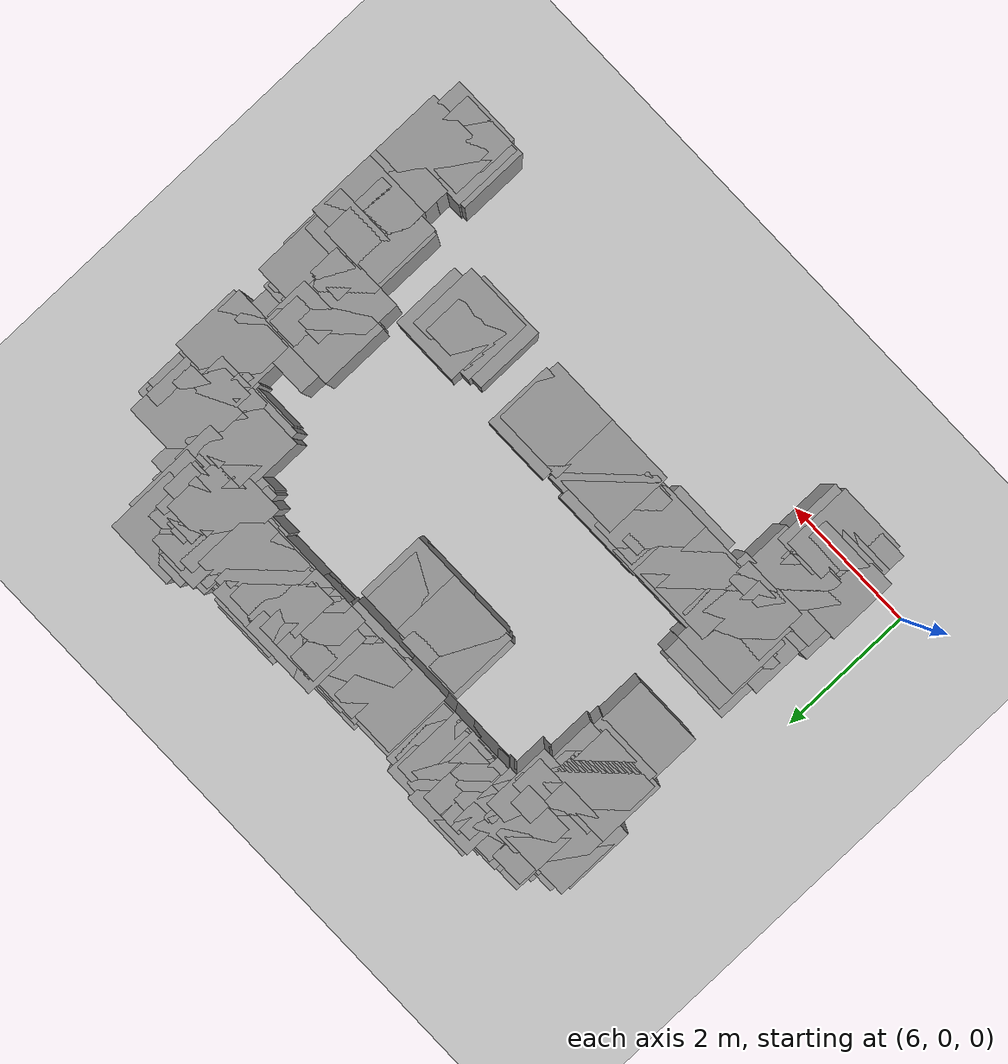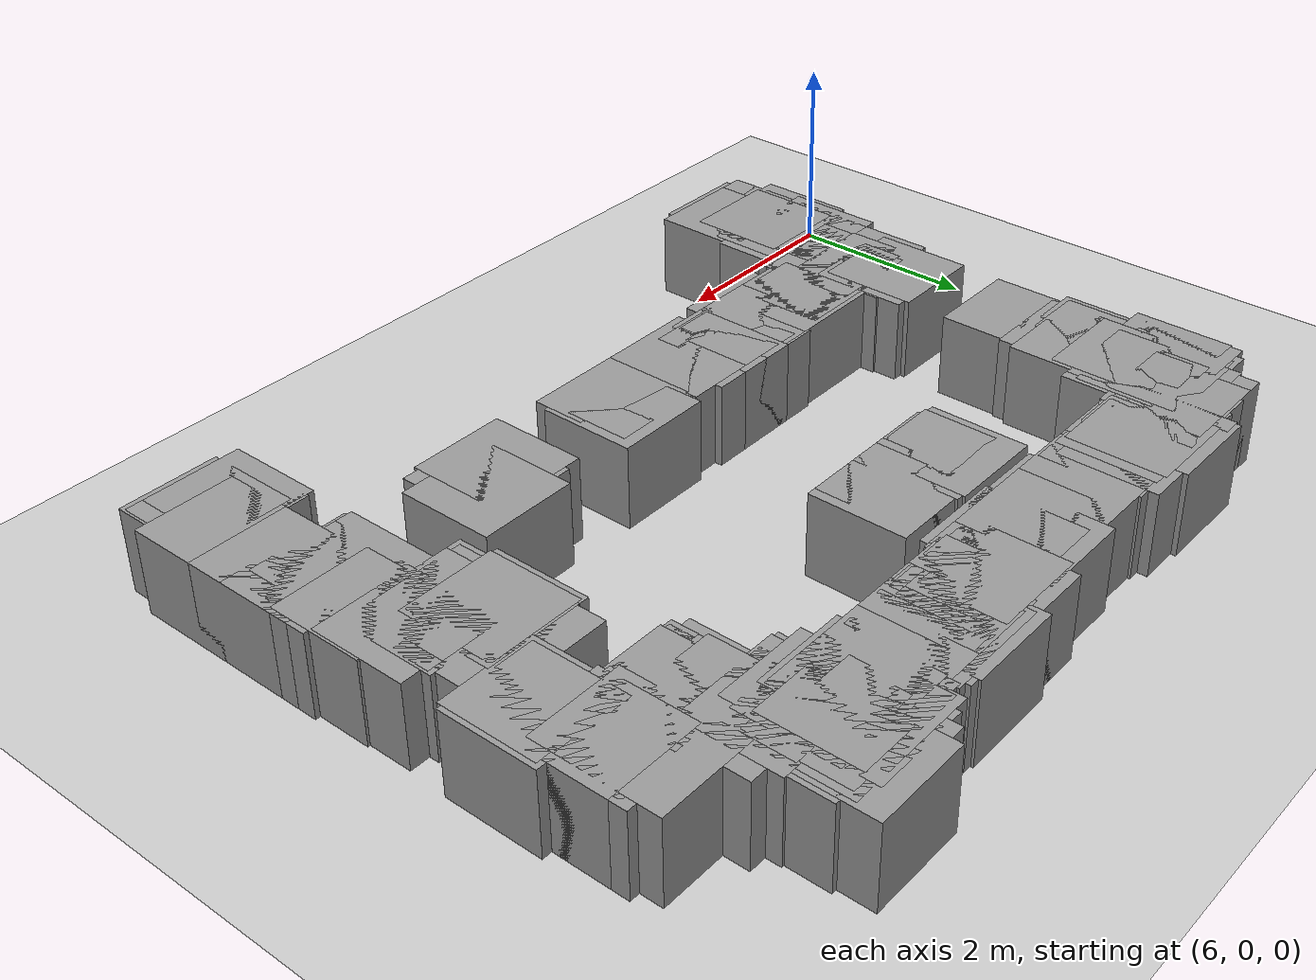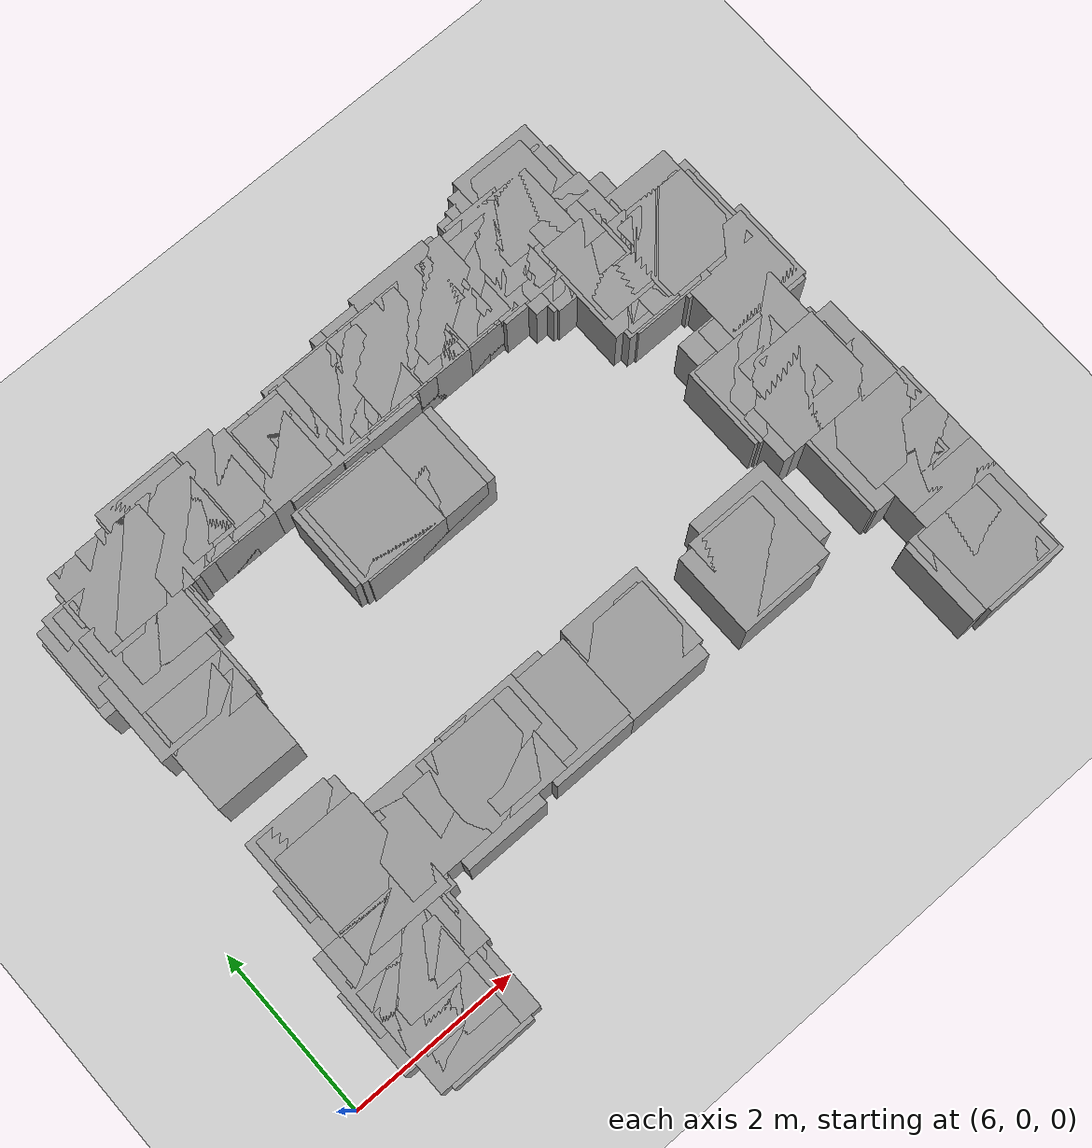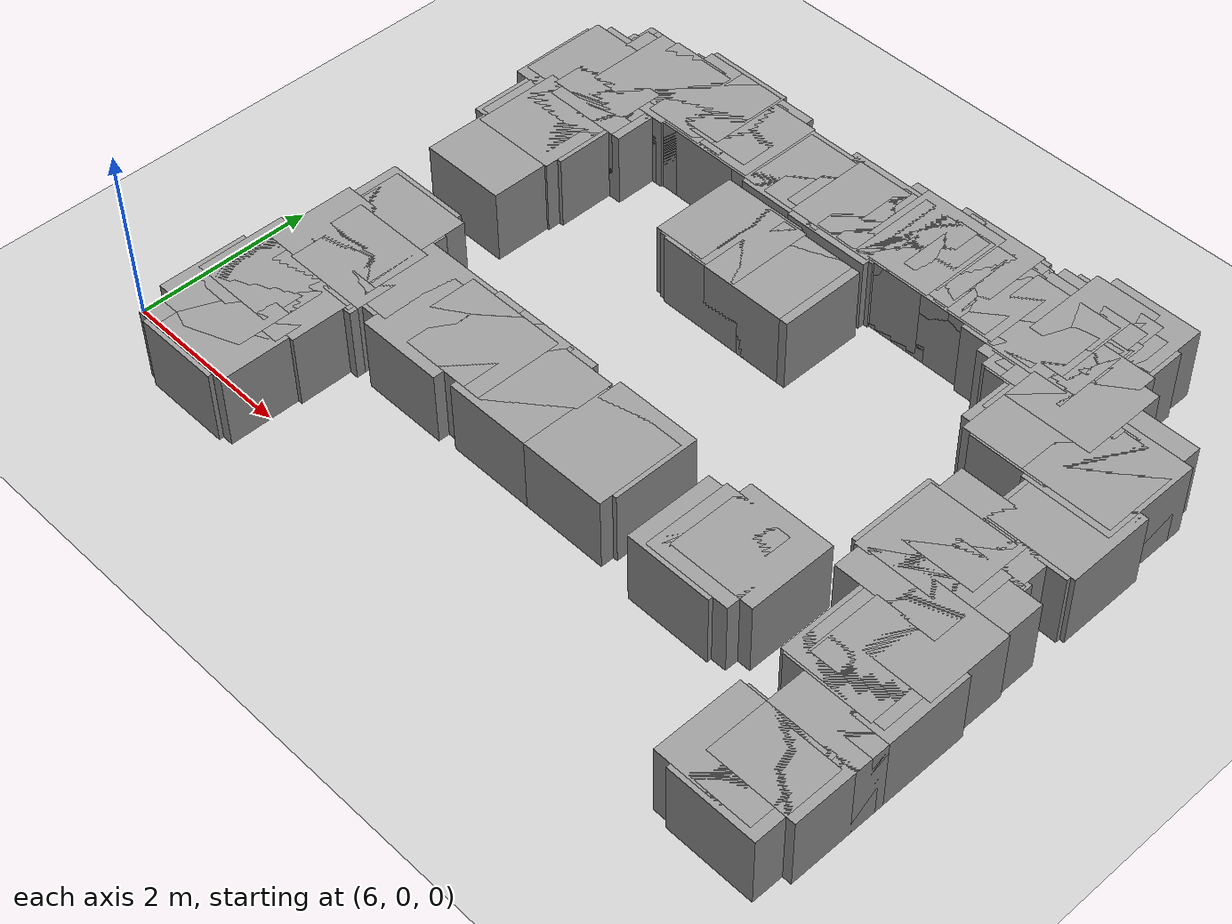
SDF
<sdf version="1.7">
 <world name="default">
  <model name="ground_plane">
   <static>1</static>
   <link name="link">
    <collision name="collision">
     <geometry><plane><normal>0 0 1</normal><size>100 100</size></plane></geometry>
     <surface>
      <contact><collide_bitmask>65535</collide_bitmask></contact>
      <friction><ode><mu>100</mu><mu2>50</mu2></ode></friction>
     </surface>
    </collision>
    <visual name="visual">
     <cast_shadows>0</cast_shadows>
     <geometry><plane><normal>0 0 1</normal><size>100 100</size></plane></geometry>
     <material>
      <script><uri>file://media/materials/scripts/gazebo.material</uri><name>Gazebo/Grey</name></script>
     </material>
    </visual>
   </link>
  </model>
  <include>
   <uri>model://unit_box</uri>
   <name>map_box_11</name>
   <pose>13.3575 5.9900 0.3500 0 0 0</pose>
   <scale>0.050 0.250 0.700</scale>
  </include>
  <include>
   <uri>model://unit_box</uri>
   <name>map_box_14</name>
   <pose>13.2075 5.8900 0.3500 0 0 0</pose>
   <scale>0.050 0.050 0.700</scale>
  </include>
  <include>
   <uri>model://unit_box</uri>
   <name>map_box_15</name>
   <pose>13.3075 5.7400 0.3500 0 0 0</pose>
   <scale>0.050 0.350 0.700</scale>
  </include>
  <include>
   <uri>model://unit_box</uri>
   <name>map_box_17</name>
   <pose>11.7575 5.6150 0.3500 0 0 0</pose>
   <scale>0.050 0.400 0.700</scale>
  </include>
  <include>
   <uri>model://unit_box</uri>
   <name>map_box_18</name>
   <pose>13.0825 5.7900 0.3500 0 0 0</pose>
   <scale>0.100 0.050 0.700</scale>
  </include>
  <include>
   <uri>model://unit_box</uri>
   <name>map_box_20</name>
   <pose>11.7075 5.7150 0.3500 0 0 0</pose>
   <scale>0.050 0.100 0.700</scale>
  </include>
  <include>
   <uri>model://unit_box</uri>
   <name>map_box_21</name>
   <pose>12.9325 5.7400 0.3500 0 0 0</pose>
   <scale>0.100 0.050 0.700</scale>
  </include>
  <include>
   <uri>model://unit_box</uri>
   <name>map_box_22</name>
   <pose>13.1075 5.4650 0.3500 0 0 0</pose>
   <scale>0.050 0.600 0.700</scale>
  </include>
  <include>
   <uri>model://unit_box</uri>
   <name>map_box_23</name>
   <pose>13.2325 5.6650 0.3500 0 0 0</pose>
   <scale>0.100 0.200 0.700</scale>
  </include>
  <include>
   <uri>model://unit_box</uri>
   <name>map_box_24</name>
   <pose>11.8075 5.6900 0.3500 0 0 0</pose>
   <scale>0.050 0.050 0.700</scale>
  </include>
  <include>
   <uri>model://unit_box</uri>
   <name>map_box_25</name>
   <pose>12.9575 5.6650 0.3500 0 0 0</pose>
   <scale>0.050 0.100 0.700</scale>
  </include>
  <include>
   <uri>model://unit_box</uri>
   <name>map_box_26</name>
   <pose>8.3325 5.6400 0.3500 0 0 0</pose>
   <scale>0.200 0.050 0.700</scale>
  </include>
  <include>
   <uri>model://unit_box</uri>
   <name>map_box_27</name>
   <pose>10.4075 5.5400 0.3500 0 0 0</pose>
   <scale>0.050 0.250 0.700</scale>
  </include>
  <include>
   <uri>model://unit_box</uri>
   <name>map_box_28</name>
   <pose>11.1325 5.6400 0.3500 0 0 0</pose>
   <scale>0.100 0.050 0.700</scale>
  </include>
  <include>
   <uri>model://unit_box</uri>
   <name>map_box_29</name>
   <pose>11.2825 5.6400 0.3500 0 0 0</pose>
   <scale>0.100 0.050 0.700</scale>
  </include>
  <include>
   <uri>model://unit_box</uri>
   <name>map_box_30</name>
   <pose>11.4075 5.5400 0.3500 0 0 0</pose>
   <scale>0.050 0.250 0.700</scale>
  </include>
  <include>
   <uri>model://unit_box</uri>
   <name>map_box_31</name>
   <pose>11.6325 5.5400 0.3500 0 0 0</pose>
   <scale>0.100 0.250 0.700</scale>
  </include>
  <include>
   <uri>model://unit_box</uri>
   <name>map_box_32</name>
   <pose>11.8825 5.6400 0.3500 0 0 0</pose>
   <scale>0.100 0.050 0.700</scale>
  </include>
  <include>
   <uri>model://unit_box</uri>
   <name>map_box_33</name>
   <pose>12.8325 5.6150 0.3500 0 0 0</pose>
   <scale>0.100 0.100 0.700</scale>
  </include>
  <include>
   <uri>model://unit_box</uri>
   <name>map_box_34</name>
   <pose>13.0325 5.6150 0.3500 0 0 0</pose>
   <scale>0.100 0.100 0.700</scale>
  </include>
  <include>
   <uri>model://unit_box</uri>
   <name>map_box_35</name>
   <pose>13.1575 5.4150 0.3500 0 0 0</pose>
   <scale>0.050 0.500 0.700</scale>
  </include>
  <include>
   <uri>model://unit_box</uri>
   <name>map_box_36</name>
   <pose>13.4075 5.6400 0.3500 0 0 0</pose>
   <scale>0.050 0.050 0.700</scale>
  </include>
  <include>
   <uri>model://unit_box</uri>
   <name>map_box_37</name>
   <pose>8.3075 5.5900 0.3500 0 0 0</pose>
   <scale>0.150 0.050 0.700</scale>
  </include>
  <include>
   <uri>model://unit_box</uri>
   <name>map_box_38</name>
   <pose>8.4825 5.5150 0.3500 0 0 0</pose>
   <scale>0.100 0.200 0.700</scale>
  </include>
  <include>
   <uri>model://unit_box</uri>
   <name>map_box_39</name>
   <pose>8.7575 5.5900 0.3500 0 0 0</pose>
   <scale>0.250 0.050 0.700</scale>
  </include>
  <include>
   <uri>model://unit_box</uri>
   <name>map_box_40</name>
   <pose>10.6825 5.5150 0.3500 0 0 0</pose>
   <scale>0.100 0.200 0.700</scale>
  </include>
  <include>
   <uri>model://unit_box</uri>
   <name>map_box_41</name>
   <pose>11.0325 5.5150 0.3500 0 0 0</pose>
   <scale>0.100 0.200 0.700</scale>
  </include>
  <include>
   <uri>model://unit_box</uri>
   <name>map_box_42</name>
   <pose>11.1575 5.5150 0.3500 0 0 0</pose>
   <scale>0.050 0.200 0.700</scale>
  </include>
  <include>
   <uri>model://unit_box</uri>
   <name>map_box_43</name>
   <pose>11.2575 5.5150 0.3500 0 0 0</pose>
   <scale>0.050 0.200 0.700</scale>
  </include>
  <include>
   <uri>model://unit_box</uri>
   <name>map_box_44</name>
   <pose>11.3575 5.5150 0.3500 0 0 0</pose>
   <scale>0.050 0.200 0.700</scale>
  </include>
  <include>
   <uri>model://unit_box</uri>
   <name>map_box_45</name>
   <pose>11.4825 5.5150 0.3500 0 0 0</pose>
   <scale>0.100 0.200 0.700</scale>
  </include>
  <include>
   <uri>model://unit_box</uri>
   <name>map_box_46</name>
   <pose>11.7075 5.5150 0.3500 0 0 0</pose>
   <scale>0.050 0.200 0.700</scale>
  </include>
  <include>
   <uri>model://unit_box</uri>
   <name>map_box_47</name>
   <pose>11.8075 5.5400 0.3500 0 0 0</pose>
   <scale>0.050 0.150 0.700</scale>
  </include>
  <include>
   <uri>model://unit_box</uri>
   <name>map_box_48</name>
   <pose>11.9075 5.5400 0.3500 0 0 0</pose>
   <scale>0.050 0.150 0.700</scale>
  </include>
  <include>
   <uri>model://unit_box</uri>
   <name>map_box_49</name>
   <pose>12.4575 5.5400 0.3500 0 0 0</pose>
   <scale>0.050 0.150 0.700</scale>
  </include>
  <include>
   <uri>model://unit_box</uri>
   <name>map_box_50</name>
   <pose>12.7325 5.5900 0.3500 0 0 0</pose>
   <scale>0.100 0.050 0.700</scale>
  </include>
  <include>
   <uri>model://unit_box</uri>
   <name>map_box_51</name>
   <pose>8.2075 5.4900 0.3500 0 0 0</pose>
   <scale>0.250 0.150 0.700</scale>
  </include>
  <include>
   <uri>model://unit_box</uri>
   <name>map_box_52</name>
   <pose>8.6075 5.4900 0.3500 0 0 0</pose>
   <scale>0.150 0.150 0.700</scale>
  </include>
  <include>
   <uri>model://unit_box</uri>
   <name>map_box_53</name>
   <pose>8.8825 5.4900 0.3500 0 0 0</pose>
   <scale>0.300 0.150 0.700</scale>
  </include>
  <include>
   <uri>model://unit_box</uri>
   <name>map_box_54</name>
   <pose>10.4575 5.4900 0.3500 0 0 0</pose>
   <scale>0.050 0.150 0.700</scale>
  </include>
  <include>
   <uri>model://unit_box</uri>
   <name>map_box_55</name>
   <pose>10.6075 5.4650 0.3500 0 0 0</pose>
   <scale>0.050 0.200 0.700</scale>
  </include>
  <include>
   <uri>model://unit_box</uri>
   <name>map_box_56</name>
   <pose>10.8575 5.4900 0.3500 0 0 0</pose>
   <scale>0.250 0.150 0.700</scale>
  </include>
  <include>
   <uri>model://unit_box</uri>
   <name>map_box_57</name>
   <pose>11.1075 5.4900 0.3500 0 0 0</pose>
   <scale>0.050 0.150 0.700</scale>
  </include>
  <include>
   <uri>model://unit_box</uri>
   <name>map_box_58</name>
   <pose>11.2075 5.4900 0.3500 0 0 0</pose>
   <scale>0.050 0.150 0.700</scale>
  </include>
  <include>
   <uri>model://unit_box</uri>
   <name>map_box_59</name>
   <pose>11.3075 5.4900 0.3500 0 0 0</pose>
   <scale>0.050 0.150 0.700</scale>
  </include>
  <include>
   <uri>model://unit_box</uri>
   <name>map_box_60</name>
   <pose>11.5575 5.4900 0.3500 0 0 0</pose>
   <scale>0.050 0.150 0.700</scale>
  </include>
  <include>
   <uri>model://unit_box</uri>
   <name>map_box_61</name>
   <pose>11.8575 5.5150 0.3500 0 0 0</pose>
   <scale>0.050 0.100 0.700</scale>
  </include>
  <include>
   <uri>model://unit_box</uri>
   <name>map_box_62</name>
   <pose>11.9825 5.5150 0.3500 0 0 0</pose>
   <scale>0.100 0.100 0.700</scale>
  </include>
  <include>
   <uri>model://unit_box</uri>
   <name>map_box_63</name>
   <pose>12.2825 5.5150 0.3500 0 0 0</pose>
   <scale>0.300 0.100 0.700</scale>
  </include>
  <include>
   <uri>model://unit_box</uri>
   <name>map_box_64</name>
   <pose>12.5075 5.5150 0.3500 0 0 0</pose>
   <scale>0.050 0.100 0.700</scale>
  </include>
  <include>
   <uri>model://unit_box</uri>
   <name>map_box_65</name>
   <pose>12.6325 5.5150 0.3500 0 0 0</pose>
   <scale>0.100 0.100 0.700</scale>
  </include>
  <include>
   <uri>model://unit_box</uri>
   <name>map_box_66</name>
   <pose>12.8075 5.4900 0.3500 0 0 0</pose>
   <scale>0.050 0.150 0.700</scale>
  </include>
  <include>
   <uri>model://unit_box</uri>
   <name>map_box_67</name>
   <pose>13.0075 5.4900 0.3500 0 0 0</pose>
   <scale>0.050 0.150 0.700</scale>
  </include>
  <include>
   <uri>model://unit_box</uri>
   <name>map_box_68</name>
   <pose>13.2075 5.5400 0.3500 0 0 0</pose>
   <scale>0.050 0.050 0.700</scale>
  </include>
  <include>
   <uri>model://unit_box</uri>
   <name>map_box_70</name>
   <pose>7.6575 5.4400 0.3500 0 0 0</pose>
   <scale>0.050 0.150 0.700</scale>
  </include>
  <include>
   <uri>model://unit_box</uri>
   <name>map_box_71</name>
   <pose>7.9325 5.4650 0.3500 0 0 0</pose>
   <scale>0.300 0.100 0.700</scale>
  </include>
  <include>
   <uri>model://unit_box</uri>
   <name>map_box_72</name>
   <pose>8.3825 5.4650 0.3500 0 0 0</pose>
   <scale>0.100 0.100 0.700</scale>
  </include>
  <include>
   <uri>model://unit_box</uri>
   <name>map_box_73</name>
   <pose>8.7075 5.4650 0.3500 0 0 0</pose>
   <scale>0.050 0.100 0.700</scale>
  </include>
  <include>
   <uri>model://unit_box</uri>
   <name>map_box_74</name>
   <pose>9.4575 5.4650 0.3500 0 0 0</pose>
   <scale>0.850 0.100 0.700</scale>
  </include>
  <include>
   <uri>model://unit_box</uri>
   <name>map_box_75</name>
   <pose>10.1575 5.4650 0.3500 0 0 0</pose>
   <scale>0.450 0.100 0.700</scale>
  </include>
  <include>
   <uri>model://unit_box</uri>
   <name>map_box_76</name>
   <pose>10.5325 5.4650 0.3500 0 0 0</pose>
   <scale>0.100 0.100 0.700</scale>
  </include>
  <include>
   <uri>model://unit_box</uri>
   <name>map_box_77</name>
   <pose>12.0825 5.4900 0.3500 0 0 0</pose>
   <scale>0.100 0.050 0.700</scale>
  </include>
  <include>
   <uri>model://unit_box</uri>
   <name>map_box_78</name>
   <pose>12.5575 5.4900 0.3500 0 0 0</pose>
   <scale>0.050 0.050 0.700</scale>
  </include>
  <include>
   <uri>model://unit_box</uri>
   <name>map_box_79</name>
   <pose>12.7325 5.4900 0.3500 0 0 0</pose>
   <scale>0.100 0.050 0.700</scale>
  </include>
  <include>
   <uri>model://unit_box</uri>
   <name>map_box_80</name>
   <pose>12.9075 5.4650 0.3500 0 0 0</pose>
   <scale>0.150 0.100 0.700</scale>
  </include>
  <include>
   <uri>model://unit_box</uri>
   <name>map_box_81</name>
   <pose>13.0575 5.4650 0.3500 0 0 0</pose>
   <scale>0.050 0.100 0.700</scale>
  </include>
  <include>
   <uri>model://unit_box</uri>
   <name>map_box_82</name>
   <pose>7.5575 5.4400 0.3500 0 0 0</pose>
   <scale>0.150 0.050 0.700</scale>
  </include>
  <include>
   <uri>model://unit_box</uri>
   <name>map_box_83</name>
   <pose>7.7325 5.4400 0.3500 0 0 0</pose>
   <scale>0.100 0.050 0.700</scale>
  </include>
  <include>
   <uri>model://unit_box</uri>
   <name>map_box_84</name>
   <pose>9.9075 5.4150 0.3500 0 0 0</pose>
   <scale>0.050 0.100 0.700</scale>
  </include>
  <include>
   <uri>model://unit_box</uri>
   <name>map_box_85</name>
   <pose>12.7575 5.4400 0.3500 0 0 0</pose>
   <scale>0.050 0.050 0.700</scale>
  </include>
  <include>
   <uri>model://unit_box</uri>
   <name>map_box_88</name>
   <pose>7.5825 5.3650 0.3500 0 0 0</pose>
   <scale>0.100 0.100 0.700</scale>
  </include>
  <include>
   <uri>model://unit_box</uri>
   <name>map_box_89</name>
   <pose>10.5575 5.3900 0.3500 0 0 0</pose>
   <scale>0.050 0.050 0.700</scale>
  </include>
  <include>
   <uri>model://unit_box</uri>
   <name>map_box_92</name>
   <pose>13.0575 5.3150 0.3500 0 0 0</pose>
   <scale>0.050 0.100 0.700</scale>
  </include>
  <include>
   <uri>model://unit_box</uri>
   <name>map_box_96</name>
   <pose>7.5575 5.0900 0.3500 0 0 0</pose>
   <scale>0.050 0.450 0.700</scale>
  </include>
  <include>
   <uri>model://unit_box</uri>
   <name>map_box_102</name>
   <pose>7.3575 5.0900 0.3500 0 0 0</pose>
   <scale>0.050 0.350 0.700</scale>
  </include>
  <include>
   <uri>model://unit_box</uri>
   <name>map_box_103</name>
   <pose>7.5075 5.2400 0.3500 0 0 0</pose>
   <scale>0.050 0.050 0.700</scale>
  </include>
  <include>
   <uri>model://unit_box</uri>
   <name>map_box_104</name>
   <pose>13.2075 5.2150 0.3500 0 0 0</pose>
   <scale>0.050 0.100 0.700</scale>
  </include>
  <include>
   <uri>model://unit_box</uri>
   <name>map_box_105</name>
   <pose>13.4325 5.2150 0.3500 0 0 0</pose>
   <scale>0.300 0.100 0.700</scale>
  </include>
  <include>
   <uri>model://unit_box</uri>
   <name>map_box_113</name>
   <pose>7.2575 5.1400 0.3500 0 0 0</pose>
   <scale>0.150 0.150 0.700</scale>
  </include>
  <include>
   <uri>model://unit_box</uri>
   <name>map_box_114</name>
   <pose>13.2575 5.1900 0.3500 0 0 0</pose>
   <scale>0.050 0.050 0.700</scale>
  </include>
  <include>
   <uri>model://unit_box</uri>
   <name>map_box_115</name>
   <pose>13.6075 5.0650 0.3500 0 0 0</pose>
   <scale>0.050 0.300 0.700</scale>
  </include>
  <include>
   <uri>model://unit_box</uri>
   <name>map_box_126</name>
   <pose>7.1325 5.0650 0.3500 0 0 0</pose>
   <scale>0.100 0.200 0.700</scale>
  </include>
  <include>
   <uri>model://unit_box</uri>
   <name>map_box_127</name>
   <pose>7.4075 4.7400 0.3500 0 0 0</pose>
   <scale>0.050 0.850 0.700</scale>
  </include>
  <include>
   <uri>model://unit_box</uri>
   <name>map_box_128</name>
   <pose>7.5075 5.1150 0.3500 0 0 0</pose>
   <scale>0.050 0.100 0.700</scale>
  </include>
  <include>
   <uri>model://unit_box</uri>
   <name>map_box_129</name>
   <pose>13.5575 4.8150 0.3500 0 0 0</pose>
   <scale>0.050 0.700 0.700</scale>
  </include>
  <include>
   <uri>model://unit_box</uri>
   <name>map_box_138</name>
   <pose>7.4575 4.3150 0.3500 0 0 0</pose>
   <scale>0.050 1.600 0.700</scale>
  </include>
  <include>
   <uri>model://unit_box</uri>
   <name>map_box_147</name>
   <pose>7.3075 4.2900 0.3500 0 0 0</pose>
   <scale>0.050 1.550 0.700</scale>
  </include>
  <include>
   <uri>model://unit_box</uri>
   <name>map_box_148</name>
   <pose>7.6075 4.9650 0.3500 0 0 0</pose>
   <scale>0.050 0.200 0.700</scale>
  </include>
  <include>
   <uri>model://unit_box</uri>
   <name>map_box_155</name>
   <pose>7.5075 4.9650 0.3500 0 0 0</pose>
   <scale>0.050 0.100 0.700</scale>
  </include>
  <include>
   <uri>model://unit_box</uri>
   <name>map_box_160</name>
   <pose>7.1075 4.9400 0.3500 0 0 0</pose>
   <scale>0.050 0.050 0.700</scale>
  </include>
  <include>
   <uri>model://unit_box</uri>
   <name>map_box_161</name>
   <pose>7.2575 4.2400 0.3500 0 0 0</pose>
   <scale>0.050 1.450 0.700</scale>
  </include>
  <include>
   <uri>model://unit_box</uri>
   <name>map_box_166</name>
   <pose>14.2575 4.8150 0.3500 0 0 0</pose>
   <scale>0.050 0.100 0.700</scale>
  </include>
  <include>
   <uri>model://unit_box</uri>
   <name>map_box_168</name>
   <pose>13.6075 4.7650 0.3500 0 0 0</pose>
   <scale>0.050 0.100 0.700</scale>
  </include>
  <include>
   <uri>model://unit_box</uri>
   <name>map_box_172</name>
   <pose>14.2075 4.5650 0.3500 0 0 0</pose>
   <scale>0.050 0.200 0.700</scale>
  </include>
  <include>
   <uri>model://unit_box</uri>
   <name>map_box_173</name>
   <pose>14.3575 4.5900 0.3500 0 0 0</pose>
   <scale>0.150 0.150 0.700</scale>
  </include>
  <include>
   <uri>model://unit_box</uri>
   <name>map_box_178</name>
   <pose>13.5075 4.5900 0.3500 0 0 0</pose>
   <scale>0.050 0.050 0.700</scale>
  </include>
  <include>
   <uri>model://unit_box</uri>
   <name>map_box_179</name>
   <pose>14.2575 4.5400 0.3500 0 0 0</pose>
   <scale>0.050 0.150 0.700</scale>
  </include>
  <include>
   <uri>model://unit_box</uri>
   <name>map_box_183</name>
   <pose>13.6575 4.5150 0.3500 0 0 0</pose>
   <scale>0.050 0.100 0.700</scale>
  </include>
  <include>
   <uri>model://unit_box</uri>
   <name>map_box_184</name>
   <pose>13.9575 4.5150 0.3500 0 0 0</pose>
   <scale>0.450 0.100 0.700</scale>
  </include>
  <include>
   <uri>model://unit_box</uri>
   <name>map_box_185</name>
   <pose>14.4575 3.8400 0.3500 0 0 0</pose>
   <scale>0.050 1.450 0.700</scale>
  </include>
  <include>
   <uri>model://unit_box</uri>
   <name>map_box_188</name>
   <pose>13.6075 4.4900 0.3500 0 0 0</pose>
   <scale>0.050 0.050 0.700</scale>
  </include>
  <include>
   <uri>model://unit_box</uri>
   <name>map_box_189</name>
   <pose>13.7075 4.4650 0.3500 0 0 0</pose>
   <scale>0.050 0.100 0.700</scale>
  </include>
  <include>
   <uri>model://unit_box</uri>
   <name>map_box_190</name>
   <pose>14.3075 4.4900 0.3500 0 0 0</pose>
   <scale>0.050 0.050 0.700</scale>
  </include>
  <include>
   <uri>model://unit_box</uri>
   <name>map_box_191</name>
   <pose>14.4075 3.7900 0.3500 0 0 0</pose>
   <scale>0.050 1.450 0.700</scale>
  </include>
  <include>
   <uri>model://unit_box</uri>
   <name>map_box_192</name>
   <pose>14.3575 4.4150 0.3500 0 0 0</pose>
   <scale>0.050 0.100 0.700</scale>
  </include>
  <include>
   <uri>model://unit_box</uri>
   <name>map_box_193</name>
   <pose>9.8825 4.3150 0.3500 0 0 0</pose>
   <scale>0.100 0.200 0.700</scale>
  </include>
  <include>
   <uri>model://unit_box</uri>
   <name>map_box_195</name>
   <pose>9.8075 4.3400 0.3500 0 0 0</pose>
   <scale>0.050 0.050 0.700</scale>
  </include>
  <include>
   <uri>model://unit_box</uri>
   <name>map_box_196</name>
   <pose>10.5075 4.2900 0.3500 0 0 0</pose>
   <scale>0.150 0.150 0.700</scale>
  </include>
  <include>
   <uri>model://unit_box</uri>
   <name>map_box_197</name>
   <pose>9.9575 4.2900 0.3500 0 0 0</pose>
   <scale>0.050 0.050 0.700</scale>
  </include>
  <include>
   <uri>model://unit_box</uri>
   <name>map_box_198</name>
   <pose>10.6075 4.2900 0.3500 0 0 0</pose>
   <scale>0.050 0.050 0.700</scale>
  </include>
  <include>
   <uri>model://unit_box</uri>
   <name>map_box_199</name>
   <pose>7.4075 4.1650 0.3500 0 0 0</pose>
   <scale>0.050 0.100 0.700</scale>
  </include>
  <include>
   <uri>model://unit_box</uri>
   <name>map_box_208</name>
   <pose>7.3825 3.5150 0.3500 0 0 0</pose>
   <scale>0.100 0.100 0.700</scale>
  </include>
  <include>
   <uri>model://unit_box</uri>
   <name>map_box_210</name>
   <pose>13.9325 3.1150 0.3500 0 0 0</pose>
   <scale>0.100 0.100 0.700</scale>
  </include>
  <include>
   <uri>model://unit_box</uri>
   <name>map_box_211</name>
   <pose>13.8575 2.7900 0.3500 0 0 0</pose>
   <scale>0.050 0.650 0.700</scale>
  </include>
  <include>
   <uri>model://unit_box</uri>
   <name>map_box_212</name>
   <pose>14.1825 3.0900 0.3500 0 0 0</pose>
   <scale>0.400 0.050 0.700</scale>
  </include>
  <include>
   <uri>model://unit_box</uri>
   <name>map_box_213</name>
   <pose>13.9075 2.8150 0.3500 0 0 0</pose>
   <scale>0.050 0.500 0.700</scale>
  </include>
  <include>
   <uri>model://unit_box</uri>
   <name>map_box_216</name>
   <pose>13.8075 2.8150 0.3500 0 0 0</pose>
   <scale>0.050 0.400 0.700</scale>
  </include>
  <include>
   <uri>model://unit_box</uri>
   <name>map_box_234</name>
   <pose>13.9575 2.5400 0.3500 0 0 0</pose>
   <scale>0.050 0.150 0.700</scale>
  </include>
  <include>
   <uri>model://unit_box</uri>
   <name>map_box_239</name>
   <pose>14.2325 2.5400 0.3500 0 0 0</pose>
   <scale>0.500 0.050 0.700</scale>
  </include>
  <include>
   <uri>model://unit_box</uri>
   <name>map_box_241</name>
   <pose>13.9075 2.4900 0.3500 0 0 0</pose>
   <scale>0.050 0.050 0.700</scale>
  </include>
  <include>
   <uri>model://unit_box</uri>
   <name>map_box_242</name>
   <pose>14.0575 2.4900 0.3500 0 0 0</pose>
   <scale>0.150 0.050 0.700</scale>
  </include>
  <include>
   <uri>model://unit_box</uri>
   <name>map_box_243</name>
   <pose>14.2075 2.4900 0.3500 0 0 0</pose>
   <scale>0.050 0.050 0.700</scale>
  </include>
  <include>
   <uri>model://unit_box</uri>
   <name>map_box_244</name>
   <pose>14.4325 2.4400 0.3500 0 0 0</pose>
   <scale>0.100 0.150 0.700</scale>
  </include>
  <include>
   <uri>model://unit_box</uri>
   <name>map_box_254</name>
   <pose>14.4575 1.9900 0.3500 0 0 0</pose>
   <scale>0.050 0.750 0.700</scale>
  </include>
  <include>
   <uri>model://unit_box</uri>
   <name>map_box_257</name>
   <pose>7.3575 2.0900 0.3500 0 0 0</pose>
   <scale>0.250 0.050 0.700</scale>
  </include>
  <include>
   <uri>model://unit_box</uri>
   <name>map_box_258</name>
   <pose>7.2825 1.5650 0.3500 0 0 0</pose>
   <scale>0.100 1.000 0.700</scale>
  </include>
  <include>
   <uri>model://unit_box</uri>
   <name>map_box_259</name>
   <pose>7.4575 2.0400 0.3500 0 0 0</pose>
   <scale>0.150 0.050 0.700</scale>
  </include>
  <include>
   <uri>model://unit_box</uri>
   <name>map_box_260</name>
   <pose>7.4825 1.7900 0.3500 0 0 0</pose>
   <scale>0.100 0.450 0.700</scale>
  </include>
  <include>
   <uri>model://unit_box</uri>
   <name>map_box_261</name>
   <pose>9.4075 1.6650 0.3500 0 0 0</pose>
   <scale>0.050 0.100 0.700</scale>
  </include>
  <include>
   <uri>model://unit_box</uri>
   <name>map_box_262</name>
   <pose>9.7575 1.6650 0.3500 0 0 0</pose>
   <scale>0.550 0.100 0.700</scale>
  </include>
  <include>
   <uri>model://unit_box</uri>
   <name>map_box_263</name>
   <pose>11.0575 1.6650 0.3500 0 0 0</pose>
   <scale>0.150 0.100 0.700</scale>
  </include>
  <include>
   <uri>model://unit_box</uri>
   <name>map_box_264</name>
   <pose>14.4075 1.6650 0.3500 0 0 0</pose>
   <scale>0.050 0.100 0.700</scale>
  </include>
  <include>
   <uri>model://unit_box</uri>
   <name>map_box_265</name>
   <pose>8.4575 1.6400 0.3500 0 0 0</pose>
   <scale>1.850 0.050 0.700</scale>
  </include>
  <include>
   <uri>model://unit_box</uri>
   <name>map_box_266</name>
   <pose>9.4575 1.6400 0.3500 0 0 0</pose>
   <scale>0.050 0.050 0.700</scale>
  </include>
  <include>
   <uri>model://unit_box</uri>
   <name>map_box_267</name>
   <pose>10.9575 1.5400 0.3500 0 0 0</pose>
   <scale>0.050 0.250 0.700</scale>
  </include>
  <include>
   <uri>model://unit_box</uri>
   <name>map_box_268</name>
   <pose>12.7575 1.6400 0.3500 0 0 0</pose>
   <scale>3.250 0.050 0.700</scale>
  </include>
  <include>
   <uri>model://unit_box</uri>
   <name>map_box_269</name>
   <pose>8.2325 1.5900 0.3500 0 0 0</pose>
   <scale>1.400 0.050 0.700</scale>
  </include>
  <include>
   <uri>model://unit_box</uri>
   <name>map_box_270</name>
   <pose>9.1075 1.5900 0.3500 0 0 0</pose>
   <scale>0.050 0.050 0.700</scale>
  </include>
  <include>
   <uri>model://unit_box</uri>
   <name>map_box_271</name>
   <pose>9.2075 1.5900 0.3500 0 0 0</pose>
   <scale>0.050 0.050 0.700</scale>
  </include>
  <include>
   <uri>model://unit_box</uri>
   <name>map_box_272</name>
   <pose>9.3075 1.5900 0.3500 0 0 0</pose>
   <scale>0.050 0.050 0.700</scale>
  </include>
  <include>
   <uri>model://unit_box</uri>
   <name>map_box_273</name>
   <pose>10.0325 1.5900 0.3500 0 0 0</pose>
   <scale>0.100 0.050 0.700</scale>
  </include>
  <include>
   <uri>model://unit_box</uri>
   <name>map_box_274</name>
   <pose>11.0075 1.5150 0.3500 0 0 0</pose>
   <scale>0.050 0.200 0.700</scale>
  </include>
  <include>
   <uri>model://unit_box</uri>
   <name>map_box_275</name>
   <pose>7.5575 1.4900 0.3500 0 0 0</pose>
   <scale>0.050 0.150 0.700</scale>
  </include>
  <include>
   <uri>model://unit_box</uri>
   <name>map_box_276</name>
   <pose>7.6575 1.5400 0.3500 0 0 0</pose>
   <scale>0.050 0.050 0.700</scale>
  </include>
  <include>
   <uri>model://unit_box</uri>
   <name>map_box_277</name>
   <pose>10.0075 1.5150 0.3500 0 0 0</pose>
   <scale>0.050 0.100 0.700</scale>
  </include>
  <include>
   <uri>model://unit_box</uri>
   <name>map_box_278</name>
   <pose>14.2075 1.5150 0.3500 0 0 0</pose>
   <scale>0.050 0.100 0.700</scale>
  </include>
  <include>
   <uri>model://unit_box</uri>
   <name>map_box_279</name>
   <pose>14.3825 1.5150 0.3500 0 0 0</pose>
   <scale>0.200 0.100 0.700</scale>
  </include>
  <include>
   <uri>model://unit_box</uri>
   <name>map_box_280</name>
   <pose>7.5075 0.8400 0.3500 0 0 0</pose>
   <scale>0.050 1.350 0.700</scale>
  </include>
  <include>
   <uri>model://unit_box</uri>
   <name>map_box_281</name>
   <pose>7.6075 1.4650 0.3500 0 0 0</pose>
   <scale>0.050 0.100 0.700</scale>
  </include>
  <include>
   <uri>model://unit_box</uri>
   <name>map_box_282</name>
   <pose>8.8325 1.4650 0.3500 0 0 0</pose>
   <scale>2.300 0.100 0.700</scale>
  </include>
  <include>
   <uri>model://unit_box</uri>
   <name>map_box_283</name>
   <pose>12.6075 1.4900 0.3500 0 0 0</pose>
   <scale>3.150 0.050 0.700</scale>
  </include>
  <include>
   <uri>model://unit_box</uri>
   <name>map_box_284</name>
   <pose>14.2575 1.4900 0.3500 0 0 0</pose>
   <scale>0.050 0.050 0.700</scale>
  </include>
  <include>
   <uri>model://unit_box</uri>
   <name>map_box_285</name>
   <pose>14.5075 1.4400 0.3500 0 0 0</pose>
   <scale>0.050 0.150 0.700</scale>
  </include>
  <include>
   <uri>model://unit_box</uri>
   <name>map_box_286</name>
   <pose>7.4575 0.7150 0.3500 0 0 0</pose>
   <scale>0.050 1.500 0.700</scale>
  </include>
  <include>
   <uri>model://unit_box</uri>
   <name>map_box_287</name>
   <pose>7.6575 1.4400 0.3500 0 0 0</pose>
   <scale>0.050 0.050 0.700</scale>
  </include>
  <include>
   <uri>model://unit_box</uri>
   <name>map_box_288</name>
   <pose>12.4325 1.4400 0.3500 0 0 0</pose>
   <scale>2.800 0.050 0.700</scale>
  </include>
  <include>
   <uri>model://unit_box</uri>
   <name>map_box_291</name>
   <pose>14.5075 1.2400 0.3500 0 0 0</pose>
   <scale>0.050 0.050 0.700</scale>
  </include>
  <include>
   <uri>model://unit_box</uri>
   <name>map_box_307</name>
   <pose>14.5075 1.0400 0.3500 0 0 0</pose>
   <scale>0.050 0.050 0.700</scale>
  </include>
  <include>
   <uri>model://unit_box</uri>
   <name>map_box_322</name>
   <pose>7.1575 0.8150 0.3500 0 0 0</pose>
   <scale>0.050 0.100 0.700</scale>
  </include>
  <include>
   <uri>model://unit_box</uri>
   <name>map_box_323</name>
   <pose>7.2825 0.8150 0.3500 0 0 0</pose>
   <scale>0.100 0.100 0.700</scale>
  </include>
  <include>
   <uri>model://unit_box</uri>
   <name>map_box_324</name>
   <pose>7.5575 0.8400 0.3500 0 0 0</pose>
   <scale>0.050 0.050 0.700</scale>
  </include>
  <include>
   <uri>model://unit_box</uri>
   <name>map_box_327</name>
   <pose>7.3075 0.3650 0.3500 0 0 0</pose>
   <scale>0.050 0.800 0.700</scale>
  </include>
  <include>
   <uri>model://unit_box</uri>
   <name>map_box_329</name>
   <pose>7.2575 0.6900 0.3500 0 0 0</pose>
   <scale>0.050 0.050 0.700</scale>
  </include>
  <include>
   <uri>model://unit_box</uri>
   <name>map_box_332</name>
   <pose>7.2575 0.4400 0.3500 0 0 0</pose>
   <scale>0.050 0.050 0.700</scale>
  </include>
  <include>
   <uri>model://unit_box</uri>
   <name>map_box_334</name>
   <pose>7.1075 0.3900 0.3500 0 0 0</pose>
   <scale>0.050 0.050 0.700</scale>
  </include>
  <include>
   <uri>model://unit_box</uri>
   <name>map_box_337</name>
   <pose>14.5075 0.3400 0.3500 0 0 0</pose>
   <scale>0.050 0.050 0.700</scale>
  </include>
  <include>
   <uri>model://unit_box</uri>
   <name>map_box_339</name>
   <pose>7.2575 0.2900 0.3500 0 0 0</pose>
   <scale>0.050 0.050 0.700</scale>
  </include>
  <include>
   <uri>model://unit_box</uri>
   <name>map_box_340</name>
   <pose>7.5075 0.0400 0.3500 0 0 0</pose>
   <scale>0.050 0.150 0.700</scale>
  </include>
  <include>
   <uri>model://unit_box</uri>
   <name>map_box_341</name>
   <pose>14.2825 0.0650 0.3500 0 0 0</pose>
   <scale>0.100 0.100 0.700</scale>
  </include>
  <include>
   <uri>model://unit_box</uri>
   <name>map_box_342</name>
   <pose>7.2575 0.0400 0.3500 0 0 0</pose>
   <scale>0.050 0.050 0.700</scale>
  </include>
  <include>
   <uri>model://unit_box</uri>
   <name>map_box_343</name>
   <pose>14.2075 0.0400 0.3500 0 0 0</pose>
   <scale>0.050 0.050 0.700</scale>
  </include>
  <include>
   <uri>model://unit_box</uri>
   <name>map_box_344</name>
   <pose>14.3825 0.0400 0.3500 0 0 0</pose>
   <scale>0.100 0.050 0.700</scale>
  </include>
  <include>
   <uri>model://unit_box</uri>
   <name>map_box_345</name>
   <pose>7.3825 -0.0100 0.3500 0 0 0</pose>
   <scale>0.100 0.050 0.700</scale>
  </include>
  <include>
   <uri>model://unit_box</uri>
   <name>map_box_346</name>
   <pose>14.4075 -0.0100 0.3500 0 0 0</pose>
   <scale>0.050 0.050 0.700</scale>
  </include>
 </world>
</sdf>
